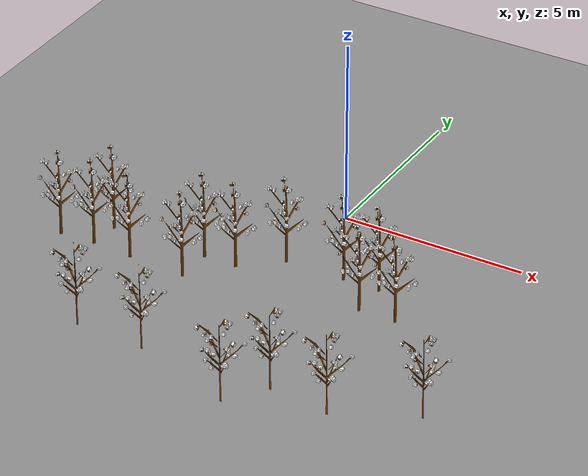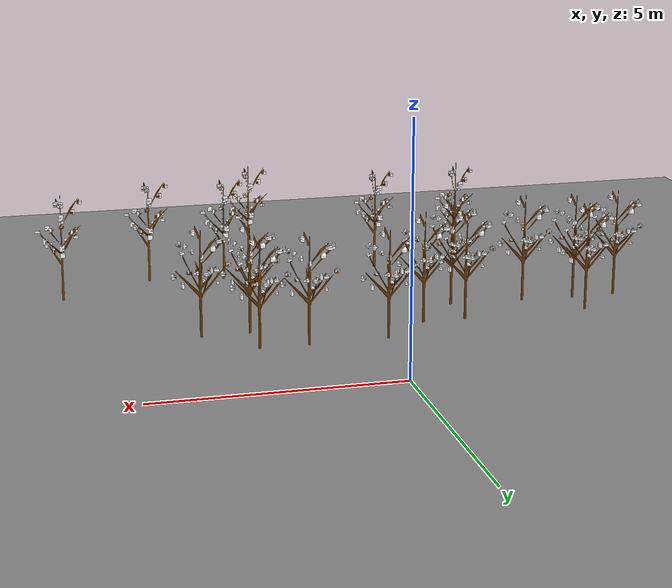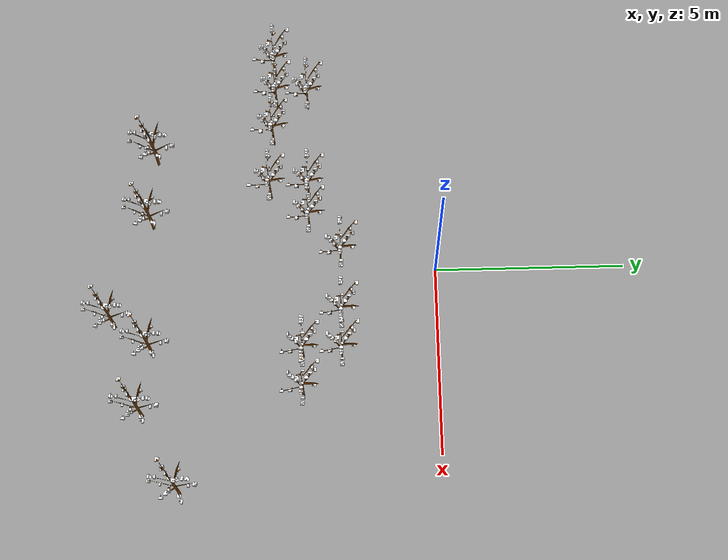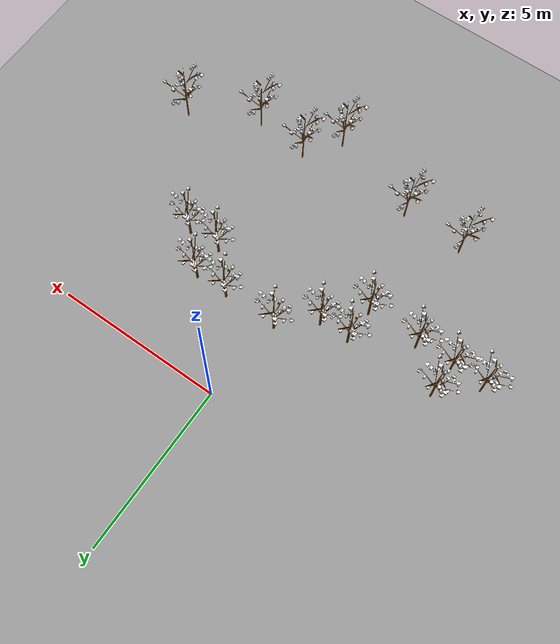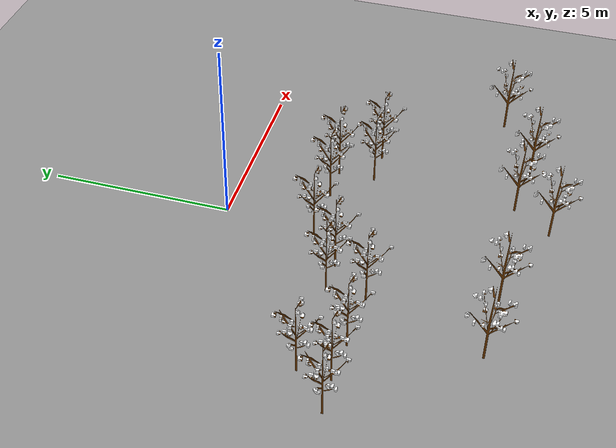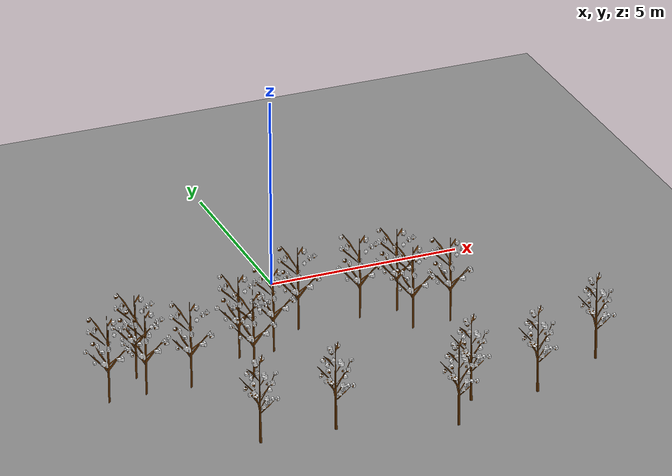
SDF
<sdf version="1.6">
 <world name="default">
  <light name="sun" type="directional">
   <pose>0 0 10 0 -0 0</pose>
   <diffuse>0.8 0.8 0.8 1</diffuse>
   <specular>0.2 0.2 0.2 1</specular>
   <attenuation>
    <range>1000</range>
    <constant>0.9</constant>
    <linear>0.01</linear>
    <quadratic>0.001</quadratic>
   </attenuation>
   <direction>-0.5 0.1 -0.9</direction>
  </light>
  <model name="earth_plane">
   <static>1</static>
   <link name="link">
    <collision name="collision">
     <geometry><plane><normal>0 0 1</normal><size>100 100</size></plane></geometry>
     <surface><friction><ode><mu>100</mu><mu2>50</mu2></ode></friction></surface>
    </collision>
    <visual name="visual">
     <cast_shadows>0</cast_shadows>
     <geometry><plane><normal>0 0 1</normal><size>100 100</size></plane></geometry>
     <material>
      <script><uri>file://media/materials/scripts/gazebo.material</uri><name>Gazebo/Grey</name></script>
     </material>
    </visual>
    <velocity_decay><linear>0</linear><angular>0</angular></velocity_decay>
   </link>
  </model>
  <model name="cotton">
   <link name="link">
    <collision name="collision">
     <geometry><mesh><scale>1 1 1</scale><uri>model://cotton/meshes/cotton.dae</uri></mesh></geometry>
    </collision>
    <inertial>
     <mass>1</mass>
     <inertia>
      <ixx>0.166667</ixx>
      <ixy>0</ixy>
      <ixz>0</ixz>
      <iyy>0.166667</iyy>
      <iyz>0</iyz>
      <izz>0.166667</izz>
     </inertia>
    </inertial>
    <visual name="visual">
     <geometry><mesh><scale>1 1 1</scale><uri>model://cotton/meshes/cotton.dae</uri></mesh></geometry>
    </visual>
    <velocity_decay><linear>0</linear><angular>0</angular></velocity_decay>
    <gravity>0</gravity>
   </link>
   <pose>-2.39067 -5 0 0 -0 0</pose>
   <static>1</static>
  </model>
  <physics name="default_physics" default="0" type="ode">
   <max_step_size>0.001</max_step_size>
   <real_time_factor>1</real_time_factor>
   <real_time_update_rate>500</real_time_update_rate>
  </physics>
  <scene>
   <ambient>0.4 0.4 0.4 1</ambient>
   <background>0.7 0.7 0.7 1</background>
   <shadows>1</shadows>
   <sky><clouds><speed>12</speed></clouds></sky>
  </scene>
  <spherical_coordinates>
   <surface_model>EARTH_WGS84</surface_model>
   <latitude_deg>0</latitude_deg>
   <longitude_deg>0</longitude_deg>
   <elevation>0</elevation>
   <heading_deg>0</heading_deg>
  </spherical_coordinates>
  <gravity>0 0 -9.8</gravity>
  <magnetic_field>6e-06 2.3e-05 -4.2e-05</magnetic_field>
  <atmosphere type="adiabatic"/>
  <audio><device>default</device></audio>
  <model name="cotton_clone">
   <link name="link">
    <collision name="collision">
     <geometry><mesh><scale>1 1 1</scale><uri>model://cotton/meshes/cotton.dae</uri></mesh></geometry>
    </collision>
    <inertial>
     <mass>1</mass>
     <inertia>
      <ixx>0.166667</ixx>
      <ixy>0</ixy>
      <ixz>0</ixz>
      <iyy>0.166667</iyy>
      <iyz>0</iyz>
      <izz>0.166667</izz>
     </inertia>
    </inertial>
    <visual name="visual">
     <geometry><mesh><scale>1 1 1</scale><uri>model://cotton/meshes/cotton.dae</uri></mesh></geometry>
    </visual>
    <velocity_decay><linear>0</linear><angular>0</angular></velocity_decay>
    <gravity>0</gravity>
   </link>
   <pose>-2.251471 -4.062685 0 0 -0 1.5</pose>
   <static>1</static>
  </model>
  <model name="cotton_clone_0">
   <link name="link">
    <collision name="collision">
     <geometry><mesh><scale>1 1 1</scale><uri>model://cotton/meshes/cotton.dae</uri></mesh></geometry>
    </collision>
    <inertial>
     <mass>1</mass>
     <inertia>
      <ixx>0.166667</ixx>
      <ixy>0</ixy>
      <ixz>0</ixz>
      <iyy>0.166667</iyy>
      <iyz>0</iyz>
      <izz>0.166667</izz>
     </inertia>
    </inertial>
    <visual name="visual">
     <geometry><mesh><scale>1 1 1</scale><uri>model://cotton/meshes/cotton.dae</uri></mesh></geometry>
    </visual>
    <velocity_decay><linear>0</linear><angular>0</angular></velocity_decay>
    <gravity>0</gravity>
   </link>
   <pose>-1.427634 -4.955015 0 0 -0 0</pose>
   <static>1</static>
  </model>
  <model name="cotton_clone_1">
   <link name="link">
    <collision name="collision">
     <geometry><mesh><scale>1 1 1</scale><uri>model://cotton/meshes/cotton.dae</uri></mesh></geometry>
    </collision>
    <inertial>
     <mass>1</mass>
     <inertia>
      <ixx>0.166667</ixx>
      <ixy>0</ixy>
      <ixz>0</ixz>
      <iyy>0.166667</iyy>
      <iyz>0</iyz>
      <izz>0.166667</izz>
     </inertia>
    </inertial>
    <visual name="visual">
     <geometry><mesh><scale>1 1 1</scale><uri>model://cotton/meshes/cotton.dae</uri></mesh></geometry>
    </visual>
    <velocity_decay><linear>0</linear><angular>0</angular></velocity_decay>
    <gravity>0</gravity>
   </link>
   <pose>-1.374254 -4.105651 0 0 -0 0</pose>
   <static>1</static>
  </model>
  <model name="cotton_clone_1_clone">
   <link name="link">
    <collision name="collision">
     <geometry><mesh><scale>1 1 1</scale><uri>model://cotton/meshes/cotton.dae</uri></mesh></geometry>
    </collision>
    <inertial>
     <mass>1</mass>
     <inertia>
      <ixx>0.166667</ixx>
      <ixy>0</ixy>
      <ixz>0</ixz>
      <iyy>0.166667</iyy>
      <iyz>0</iyz>
      <izz>0.166667</izz>
     </inertia>
    </inertial>
    <visual name="visual">
     <geometry><mesh><scale>1 1 1</scale><uri>model://cotton/meshes/cotton.dae</uri></mesh></geometry>
    </visual>
    <velocity_decay><linear>0</linear><angular>0</angular></velocity_decay>
    <gravity>0</gravity>
   </link>
   <pose>-0.363088 -4.138568 0 0 -0 1.5</pose>
   <static>1</static>
  </model>
  <model name="cotton_clone_1_clone_0">
   <link name="link">
    <collision name="collision">
     <geometry><mesh><scale>1 1 1</scale><uri>model://cotton/meshes/cotton.dae</uri></mesh></geometry>
    </collision>
    <inertial>
     <mass>1</mass>
     <inertia>
      <ixx>0.166667</ixx>
      <ixy>0</ixy>
      <ixz>0</ixz>
      <iyy>0.166667</iyy>
      <iyz>0</iyz>
      <izz>0.166667</izz>
     </inertia>
    </inertial>
    <visual name="visual">
     <geometry><mesh><scale>1 1 1</scale><uri>model://cotton/meshes/cotton.dae</uri></mesh></geometry>
    </visual>
    <velocity_decay><linear>0</linear><angular>0</angular></velocity_decay>
    <gravity>0</gravity>
   </link>
   <pose>-0.304355 -5.03714 0 0 -0 0</pose>
   <static>1</static>
  </model>
  <model name="cotton_clone_1_clone_clone">
   <link name="link">
    <collision name="collision">
     <geometry><mesh><scale>1 1 1</scale><uri>model://cotton/meshes/cotton.dae</uri></mesh></geometry>
    </collision>
    <inertial>
     <mass>1</mass>
     <inertia>
      <ixx>0.166667</ixx>
      <ixy>0</ixy>
      <ixz>0</ixz>
      <iyy>0.166667</iyy>
      <iyz>0</iyz>
      <izz>0.166667</izz>
     </inertia>
    </inertial>
    <visual name="visual">
     <geometry><mesh><scale>1 1 1</scale><uri>model://cotton/meshes/cotton.dae</uri></mesh></geometry>
    </visual>
    <velocity_decay><linear>0</linear><angular>0</angular></velocity_decay>
    <gravity>0</gravity>
   </link>
   <pose>2.202172 -4.084283 0 0 -0 0</pose>
   <static>1</static>
  </model>
  <model name="cotton_clone_1_clone_clone_0">
   <link name="link">
    <collision name="collision">
     <geometry><mesh><scale>1 1 1</scale><uri>model://cotton/meshes/cotton.dae</uri></mesh></geometry>
    </collision>
    <inertial>
     <mass>1</mass>
     <inertia>
      <ixx>0.166667</ixx>
      <ixy>0</ixy>
      <ixz>0</ixz>
      <iyy>0.166667</iyy>
      <iyz>0</iyz>
      <izz>0.166667</izz>
     </inertia>
    </inertial>
    <visual name="visual">
     <geometry><mesh><scale>1 1 1</scale><uri>model://cotton/meshes/cotton.dae</uri></mesh></geometry>
    </visual>
    <velocity_decay><linear>0</linear><angular>0</angular></velocity_decay>
    <gravity>0</gravity>
   </link>
   <pose>2.408238 -5.05287 0 0 -0 1.5</pose>
   <static>1</static>
  </model>
  <model name="cotton_clone_1_clone_clone_1">
   <link name="link">
    <collision name="collision">
     <geometry><mesh><scale>1 1 1</scale><uri>model://cotton/meshes/cotton.dae</uri></mesh></geometry>
    </collision>
    <inertial>
     <mass>1</mass>
     <inertia>
      <ixx>0.166667</ixx>
      <ixy>0</ixy>
      <ixz>0</ixz>
      <iyy>0.166667</iyy>
      <iyz>0</iyz>
      <izz>0.166667</izz>
     </inertia>
    </inertial>
    <visual name="visual">
     <geometry><mesh><scale>1 1 1</scale><uri>model://cotton/meshes/cotton.dae</uri></mesh></geometry>
    </visual>
    <velocity_decay><linear>0</linear><angular>0</angular></velocity_decay>
    <gravity>0</gravity>
   </link>
   <pose>1.299173 -4.088880 0 0 -0 0</pose>
   <static>1</static>
  </model>
  <model name="cotton_clone_1_clone_clone_2">
   <link name="link">
    <collision name="collision">
     <geometry><mesh><scale>1 1 1</scale><uri>model://cotton/meshes/cotton.dae</uri></mesh></geometry>
    </collision>
    <inertial>
     <mass>1</mass>
     <inertia>
      <ixx>0.166667</ixx>
      <ixy>0</ixy>
      <ixz>0</ixz>
      <iyy>0.166667</iyy>
      <iyz>0</iyz>
      <izz>0.166667</izz>
     </inertia>
    </inertial>
    <visual name="visual">
     <geometry><mesh><scale>1 1 1</scale><uri>model://cotton/meshes/cotton.dae</uri></mesh></geometry>
    </visual>
    <velocity_decay><linear>0</linear><angular>0</angular></velocity_decay>
    <gravity>0</gravity>
   </link>
   <pose>1.28207 -5.11188 0 0 -0 0</pose>
   <static>1</static>
  </model>
  <model name="cotton_clone_1_clone_clone_3">
   <link name="link">
    <collision name="collision">
     <geometry><mesh><scale>1 1 1</scale><uri>model://cotton/meshes/cotton.dae</uri></mesh></geometry>
    </collision>
    <inertial>
     <mass>1</mass>
     <inertia>
      <ixx>0.166667</ixx>
      <ixy>0</ixy>
      <ixz>0</ixz>
      <iyy>0.166667</iyy>
      <iyz>0</iyz>
      <izz>0.166667</izz>
     </inertia>
    </inertial>
    <visual name="visual">
     <geometry><mesh><scale>1 1 1</scale><uri>model://cotton/meshes/cotton.dae</uri></mesh></geometry>
    </visual>
    <velocity_decay><linear>0</linear><angular>0</angular></velocity_decay>
    <gravity>0</gravity>
   </link>
   <pose>3.164838 -4.047196 0 0 -0 1.5</pose>
   <static>1</static>
  </model>
  <model name="cotton_clone_1_clone_clone_4">
   <link name="link">
    <collision name="collision">
     <geometry><mesh><scale>1 1 1</scale><uri>model://cotton/meshes/cotton.dae</uri></mesh></geometry>
    </collision>
    <inertial>
     <mass>1</mass>
     <inertia>
      <ixx>0.166667</ixx>
      <ixy>0</ixy>
      <ixz>0</ixz>
      <iyy>0.166667</iyy>
      <iyz>0</iyz>
      <izz>0.166667</izz>
     </inertia>
    </inertial>
    <visual name="visual">
     <geometry><mesh><scale>1 1 1</scale><uri>model://cotton/meshes/cotton.dae</uri></mesh></geometry>
    </visual>
    <velocity_decay><linear>0</linear><angular>0</angular></velocity_decay>
    <gravity>0</gravity>
   </link>
   <pose>3.182399 -3.254582 0 0 -0 0</pose>
   <static>1</static>
  </model>
  <model name="cotton_clone_5">
   <link name="link">
    <collision name="collision">
     <geometry><mesh><scale>1 1 1</scale><uri>model://cotton/meshes/cotton.dae</uri></mesh></geometry>
    </collision>
    <inertial>
     <mass>1</mass>
     <inertia>
      <ixx>0.166667</ixx>
      <ixy>0</ixy>
      <ixz>0</ixz>
      <iyy>0.166667</iyy>
      <iyz>0</iyz>
      <izz>0.166667</izz>
     </inertia>
    </inertial>
    <visual name="visual">
     <geometry><mesh><scale>1 1 1</scale><uri>model://cotton/meshes/cotton.dae</uri></mesh></geometry>
    </visual>
    <velocity_decay><linear>0</linear><angular>0</angular></velocity_decay>
    <gravity>0</gravity>
   </link>
   <pose>4.816557 -3.254582 0 0 -0 0</pose>
   <static>1</static>
  </model>
  <model name="cotton_clone_6">
   <link name="link">
    <collision name="collision">
     <geometry><mesh><scale>1 1 1</scale><uri>model://cotton/meshes/cotton.dae</uri></mesh></geometry>
    </collision>
    <inertial>
     <mass>1</mass>
     <inertia>
      <ixx>0.166667</ixx>
      <ixy>0</ixy>
      <ixz>0</ixz>
      <iyy>0.166667</iyy>
      <iyz>0</iyz>
      <izz>0.166667</izz>
     </inertia>
    </inertial>
    <visual name="visual">
     <geometry><mesh><scale>1 1 1</scale><uri>model://cotton/meshes/cotton.dae</uri></mesh></geometry>
    </visual>
    <velocity_decay><linear>0</linear><angular>0</angular></velocity_decay>
    <gravity>0</gravity>
   </link>
   <pose>4.816557 -4.254582 0 0 -0 1.5</pose>
   <static>1</static>
  </model>
  <model name="cotton_clone_7">
   <link name="link">
    <collision name="collision">
     <geometry><mesh><scale>1 1 1</scale><uri>model://cotton/meshes/cotton.dae</uri></mesh></geometry>
    </collision>
    <inertial>
     <mass>1</mass>
     <inertia>
      <ixx>0.166667</ixx>
      <ixy>0</ixy>
      <ixz>0</ixz>
      <iyy>0.166667</iyy>
      <iyz>0</iyz>
      <izz>0.166667</izz>
     </inertia>
    </inertial>
    <visual name="visual">
     <geometry><mesh><scale>1 1 1</scale><uri>model://cotton/meshes/cotton.dae</uri></mesh></geometry>
    </visual>
    <velocity_decay><linear>0</linear><angular>0</angular></velocity_decay>
    <gravity>0</gravity>
   </link>
   <pose>5.816557 -3.254582 0 0 -0 0</pose>
   <static>1</static>
  </model>
  <model name="cotton_clone_8">
   <link name="link">
    <collision name="collision">
     <geometry><mesh><scale>1 1 1</scale><uri>model://cotton/meshes/cotton.dae</uri></mesh></geometry>
    </collision>
    <inertial>
     <mass>1</mass>
     <inertia>
      <ixx>0.166667</ixx>
      <ixy>0</ixy>
      <ixz>0</ixz>
      <iyy>0.166667</iyy>
      <iyz>0</iyz>
      <izz>0.166667</izz>
     </inertia>
    </inertial>
    <visual name="visual">
     <geometry><mesh><scale>1 1 1</scale><uri>model://cotton/meshes/cotton.dae</uri></mesh></geometry>
    </visual>
    <velocity_decay><linear>0</linear><angular>0</angular></velocity_decay>
    <gravity>0</gravity>
   </link>
   <pose>5.816557 -4.254582 0 0 -0 0</pose>
   <static>1</static>
  </model>
  <model name="cotton_clone_9">
   <link name="link">
    <collision name="collision">
     <geometry><mesh><scale>1 1 1</scale><uri>model://cotton/meshes/cotton.dae</uri></mesh></geometry>
    </collision>
    <inertial>
     <mass>1</mass>
     <inertia>
      <ixx>0.166667</ixx>
      <ixy>0</ixy>
      <ixz>0</ixz>
      <iyy>0.166667</iyy>
      <iyz>0</iyz>
      <izz>0.166667</izz>
     </inertia>
    </inertial>
    <visual name="visual">
     <geometry><mesh><scale>1 1 1</scale><uri>model://cotton/meshes/cotton.dae</uri></mesh></geometry>
    </visual>
    <velocity_decay><linear>0</linear><angular>0</angular></velocity_decay>
    <gravity>0</gravity>
   </link>
   <pose>6.816557 -3.254582 0 0 -0 1.5</pose>
   <static>1</static>
  </model>
  <model name="cotton_clone_10">
   <link name="link">
    <collision name="collision">
     <geometry><mesh><scale>1 1 1</scale><uri>model://cotton/meshes/cotton.dae</uri></mesh></geometry>
    </collision>
    <inertial>
     <mass>1</mass>
     <inertia>
      <ixx>0.166667</ixx>
      <ixy>0</ixy>
      <ixz>0</ixz>
      <iyy>0.166667</iyy>
      <iyz>0</iyz>
      <izz>0.166667</izz>
     </inertia>
    </inertial>
    <visual name="visual">
     <geometry><mesh><scale>1 1 1</scale><uri>model://cotton/meshes/cotton.dae</uri></mesh></geometry>
    </visual>
    <velocity_decay><linear>0</linear><angular>0</angular></velocity_decay>
    <gravity>0</gravity>
   </link>
   <pose>6.816557 -4.254582 0 0 -0 0</pose>
   <static>1</static>
  </model>
 </world>
</sdf>
